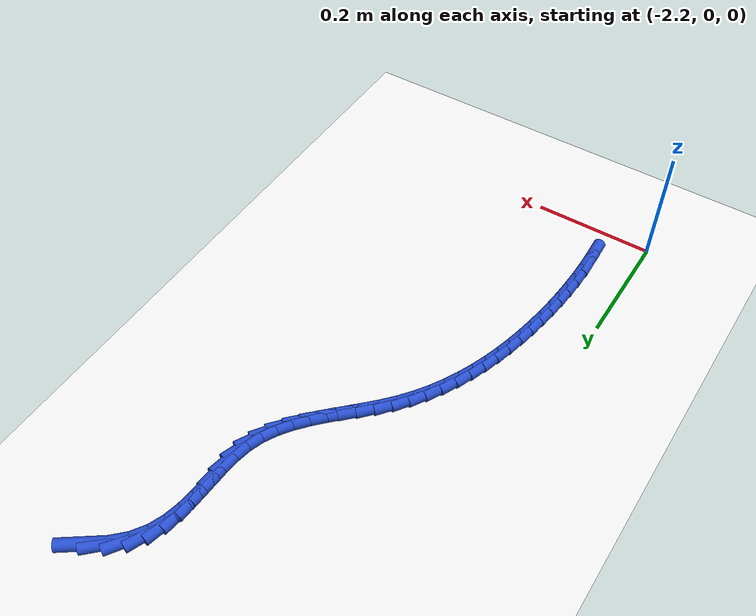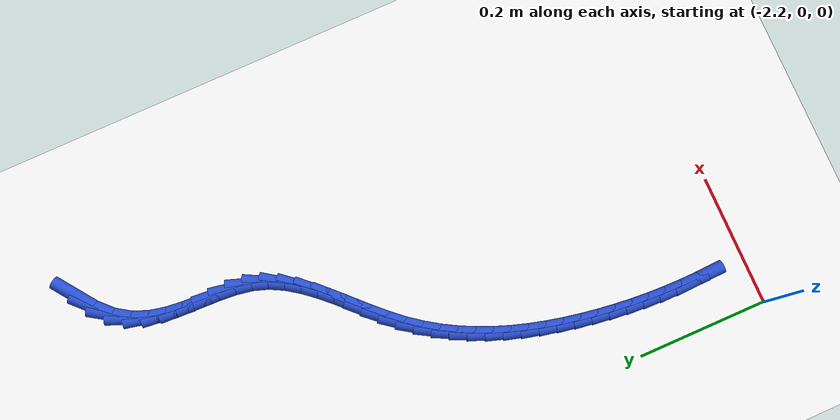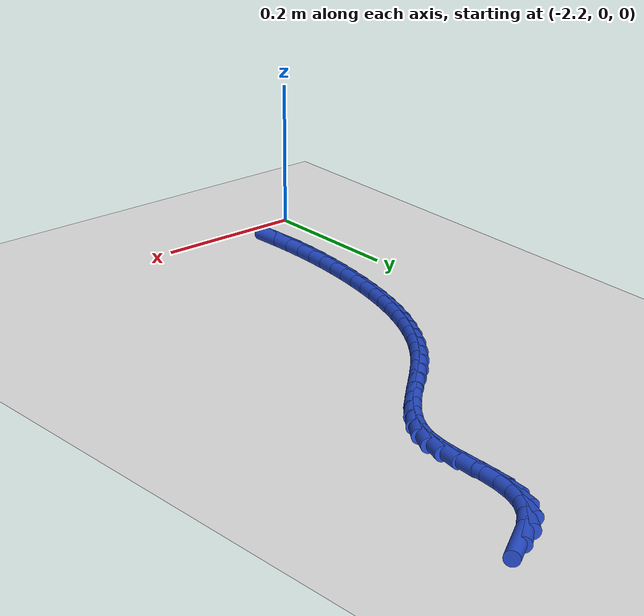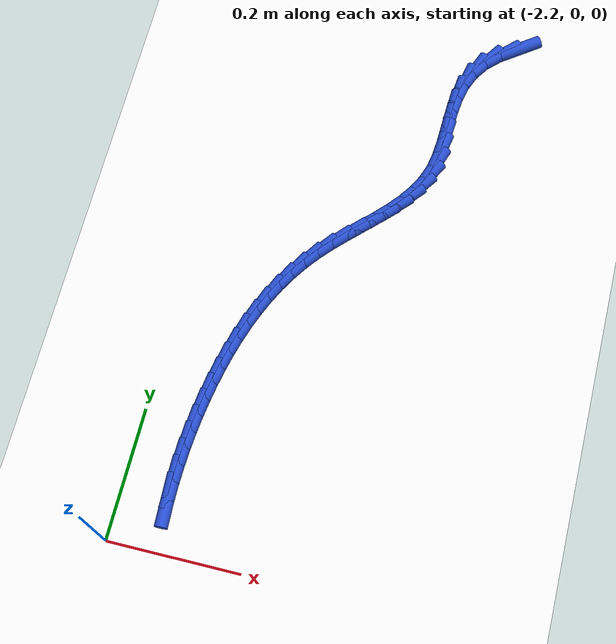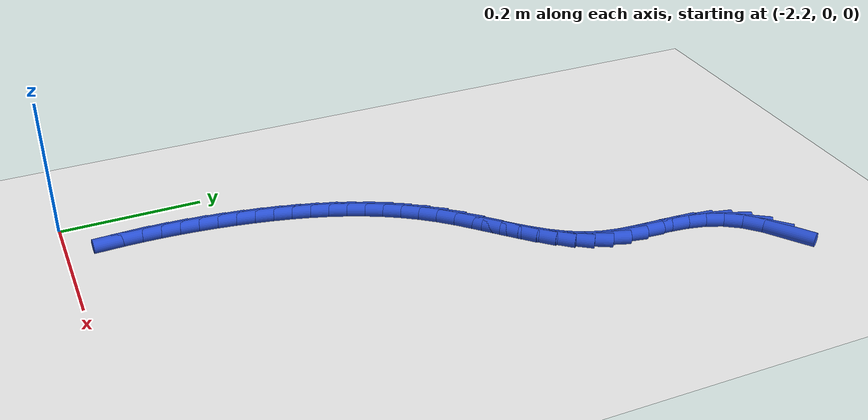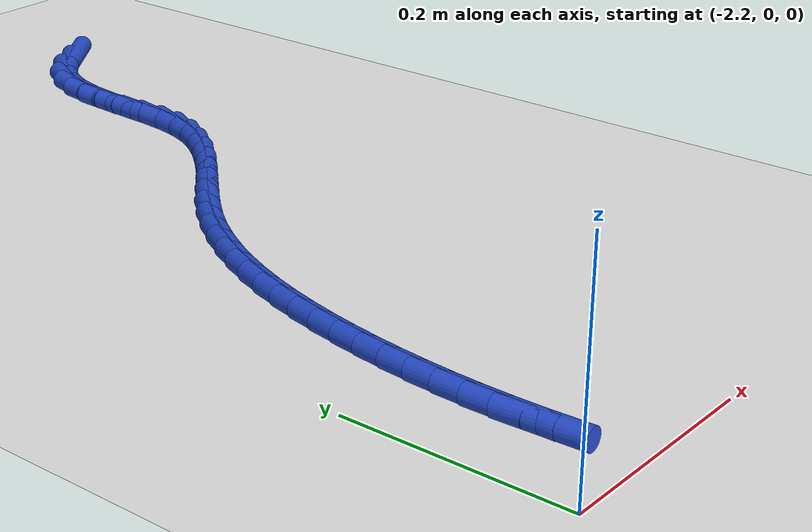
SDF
<sdf version="1.6">
 <world name="default">
  <model name="ground_plane">
   <static>1</static>
   <link name="link">
    <collision name="collision">
     <geometry><plane><normal>0 0 1</normal><size>100 100</size></plane></geometry>
     <surface><friction><ode><mu>100</mu><mu2>50</mu2></ode></friction></surface>
    </collision>
    <visual name="visual">
     <cast_shadows>0</cast_shadows>
     <geometry><plane><normal>0 0 1</normal><size>100 100</size></plane></geometry>
     <material>
      <script><uri>file://media/materials/scripts/gazebo.material</uri><name>Gazebo/WhiteGlow</name></script>
     </material>
    </visual>
   </link>
  </model>
  <model name="line">
   <link name="link_113">
    <pose>-1.7804318978348388 0.922196848700327 0.01 0 1.57 0.6228280951447669</pose>
    <collision name="collision">
     <geometry><cylinder><radius>0.01</radius><length>0.08</length></cylinder></geometry>
    </collision>
    <visual name="visual">
     <material>
      <script><name>Gazebo/Blue</name><uri>file://media/materials/scripts/gazebo.material</uri></script>
     </material>
     <geometry><cylinder><radius>0.01</radius><length>0.08</length></cylinder></geometry>
    </visual>
   </link>
   <link name="link_114">
    <pose>-1.8067268757675528 0.9033121338365956 0.01 0 1.57 0.7735924669744226</pose>
    <collision name="collision">
     <geometry><cylinder><radius>0.01</radius><length>0.08</length></cylinder></geometry>
    </collision>
    <visual name="visual">
     <material>
      <script><name>Gazebo/Blue</name><uri>file://media/materials/scripts/gazebo.material</uri></script>
     </material>
     <geometry><cylinder><radius>0.01</radius><length>0.08</length></cylinder></geometry>
    </visual>
   </link>
   <link name="link_115">
    <pose>-1.8279494496928415 0.8825848304375503 0.01 0 1.57 0.986109560297999</pose>
    <collision name="collision">
     <geometry><cylinder><radius>0.01</radius><length>0.08</length></cylinder></geometry>
    </collision>
    <visual name="visual">
     <material>
      <script><name>Gazebo/Blue</name><uri>file://media/materials/scripts/gazebo.material</uri></script>
     </material>
     <geometry><cylinder><radius>0.01</radius><length>0.08</length></cylinder></geometry>
    </visual>
   </link>
   <link name="link_116">
    <pose>-1.8430043568351748 0.8598394193925721 0.01 0 1.57 1.194696136422728</pose>
    <collision name="collision">
     <geometry><cylinder><radius>0.01</radius><length>0.08</length></cylinder></geometry>
    </collision>
    <visual name="visual">
     <material>
      <script><name>Gazebo/Blue</name><uri>file://media/materials/scripts/gazebo.material</uri></script>
     </material>
     <geometry><cylinder><radius>0.01</radius><length>0.08</length></cylinder></geometry>
    </visual>
   </link>
   <link name="link_117">
    <pose>-1.852655729742783 0.835399239361796 0.01 0 1.57 1.3580620464131121</pose>
    <collision name="collision">
     <geometry><cylinder><radius>0.01</radius><length>0.08</length></cylinder></geometry>
    </collision>
    <visual name="visual">
     <material>
      <script><name>Gazebo/Blue</name><uri>file://media/materials/scripts/gazebo.material</uri></script>
     </material>
     <geometry><cylinder><radius>0.01</radius><length>0.08</length></cylinder></geometry>
    </visual>
   </link>
   <link name="link_118">
    <pose>-1.858200243518386 0.8097305050189556 0.01 0 1.57 1.467710016279355</pose>
    <collision name="collision">
     <geometry><cylinder><radius>0.01</radius><length>0.08</length></cylinder></geometry>
    </collision>
    <visual name="visual">
     <material>
      <script><name>Gazebo/Blue</name><uri>file://media/materials/scripts/gazebo.material</uri></script>
     </material>
     <geometry><cylinder><radius>0.01</radius><length>0.08</length></cylinder></geometry>
    </visual>
   </link>
   <link name="link_119">
    <pose>-1.8609346169472485 0.7832994427573892 0.01 0 1.57 1.5251460054851158</pose>
    <collision name="collision">
     <geometry><cylinder><radius>0.01</radius><length>0.08</length></cylinder></geometry>
    </collision>
    <visual name="visual">
     <material>
      <script><name>Gazebo/Blue</name><uri>file://media/materials/scripts/gazebo.material</uri></script>
     </material>
     <geometry><cylinder><radius>0.01</radius><length>0.08</length></cylinder></geometry>
    </visual>
   </link>
   <link name="link_120">
    <pose>-1.8621555688146387 0.7565722789704353 0.01 0 1.57 1.5329995367925697</pose>
    <collision name="collision">
     <geometry><cylinder><radius>0.01</radius><length>0.08</length></cylinder></geometry>
    </collision>
    <visual name="visual">
     <material>
      <script><name>Gazebo/Blue</name><uri>file://media/materials/scripts/gazebo.material</uri></script>
     </material>
     <geometry><cylinder><radius>0.01</radius><length>0.08</length></cylinder></geometry>
    </visual>
   </link>
   <link name="link_121">
    <pose>-1.8631598179058209 0.7300152400514327 0.01 0 1.57 1.4905596284436837</pose>
    <collision name="collision">
     <geometry><cylinder><radius>0.01</radius><length>0.08</length></cylinder></geometry>
    </collision>
    <visual name="visual">
     <material>
      <script><name>Gazebo/Blue</name><uri>file://media/materials/scripts/gazebo.material</uri></script>
     </material>
     <geometry><cylinder><radius>0.01</radius><length>0.08</length></cylinder></geometry>
    </visual>
   </link>
   <link name="link_122">
    <pose>-1.865244083006061 0.7040945523937191 0.01 0 1.57 1.3929477148538822</pose>
    <collision name="collision">
     <geometry><cylinder><radius>0.01</radius><length>0.08</length></cylinder></geometry>
    </collision>
    <visual name="visual">
     <material>
      <script><name>Gazebo/Blue</name><uri>file://media/materials/scripts/gazebo.material</uri></script>
     </material>
     <geometry><cylinder><radius>0.01</radius><length>0.08</length></cylinder></geometry>
    </visual>
   </link>
   <link name="link_123">
    <pose>-1.8697050829006256 0.6792764423906333 0.01 0 1.57 1.2396146551155778</pose>
    <collision name="collision">
     <geometry><cylinder><radius>0.01</radius><length>0.08</length></cylinder></geometry>
    </collision>
    <visual name="visual">
     <material>
      <script><name>Gazebo/Blue</name><uri>file://media/materials/scripts/gazebo.material</uri></script>
     </material>
     <geometry><cylinder><radius>0.01</radius><length>0.08</length></cylinder></geometry>
    </visual>
   </link>
   <link name="link_124">
    <pose>-1.8777160002573734 0.6559784425139357 0.01 0 1.57 1.083832718466362</pose>
    <collision name="collision">
     <geometry><cylinder><radius>0.01</radius><length>0.08</length></cylinder></geometry>
    </collision>
    <visual name="visual">
     <material>
      <script><name>Gazebo/Blue</name><uri>file://media/materials/scripts/gazebo.material</uri></script>
     </material>
     <geometry><cylinder><radius>0.01</radius><length>0.08</length></cylinder></geometry>
    </visual>
   </link>
   <link name="link_125">
    <pose>-1.8892720402464327 0.6341537647993928 0.01 0 1.57 0.9605756713530434</pose>
    <collision name="collision">
     <geometry><cylinder><radius>0.01</radius><length>0.08</length></cylinder></geometry>
    </collision>
    <visual name="visual">
     <material>
      <script><name>Gazebo/Blue</name><uri>file://media/materials/scripts/gazebo.material</uri></script>
     </material>
     <geometry><cylinder><radius>0.01</radius><length>0.08</length></cylinder></geometry>
    </visual>
   </link>
   <link name="link_126">
    <pose>-1.9037153769650421 0.6134982176625287 0.01 0 1.57 0.8709692458482133</pose>
    <collision name="collision">
     <geometry><cylinder><radius>0.01</radius><length>0.08</length></cylinder></geometry>
    </collision>
    <visual name="visual">
     <material>
      <script><name>Gazebo/Blue</name><uri>file://media/materials/scripts/gazebo.material</uri></script>
     </material>
     <geometry><cylinder><radius>0.01</radius><length>0.08</length></cylinder></geometry>
    </visual>
   </link>
   <link name="link_127">
    <pose>-1.9203812338829225 0.5937048698074501 0.01 0 1.57 0.8124719996282539</pose>
    <collision name="collision">
     <geometry><cylinder><radius>0.01</radius><length>0.08</length></cylinder></geometry>
    </collision>
    <visual name="visual">
     <material>
      <script><name>Gazebo/Blue</name><uri>file://media/materials/scripts/gazebo.material</uri></script>
     </material>
     <geometry><cylinder><radius>0.01</radius><length>0.08</length></cylinder></geometry>
    </visual>
   </link>
   <link name="link_128">
    <pose>-1.9386048344697928 0.5744667899382634 0.01 0 1.57 0.7820699987151097</pose>
    <collision name="collision">
     <geometry><cylinder><radius>0.01</radius><length>0.08</length></cylinder></geometry>
    </collision>
    <visual name="visual">
     <material>
      <script><name>Gazebo/Blue</name><uri>file://media/materials/scripts/gazebo.material</uri></script>
     </material>
     <geometry><cylinder><radius>0.01</radius><length>0.08</length></cylinder></geometry>
    </visual>
   </link>
   <link name="link_129">
    <pose>-1.9577214021953737 0.5554770467590753 0.01 0 1.57 0.777677643581501</pose>
    <collision name="collision">
     <geometry><cylinder><radius>0.01</radius><length>0.08</length></cylinder></geometry>
    </collision>
    <visual name="visual">
     <material>
      <script><name>Gazebo/Blue</name><uri>file://media/materials/scripts/gazebo.material</uri></script>
     </material>
     <geometry><cylinder><radius>0.01</radius><length>0.08</length></cylinder></geometry>
    </visual>
   </link>
   <link name="link_130">
    <pose>-1.9770661605293862 0.5364287089739924 0.01 0 1.57 0.79859323279427</pose>
    <collision name="collision">
     <geometry><cylinder><radius>0.01</radius><length>0.08</length></cylinder></geometry>
    </collision>
    <visual name="visual">
     <material>
      <script><name>Gazebo/Blue</name><uri>file://media/materials/scripts/gazebo.material</uri></script>
     </material>
     <geometry><cylinder><radius>0.01</radius><length>0.08</length></cylinder></geometry>
    </visual>
   </link>
   <link name="link_131">
    <pose>-1.9959743329415505 0.5170148452871215 0.01 0 1.57 0.8454749350889651</pose>
    <collision name="collision">
     <geometry><cylinder><radius>0.01</radius><length>0.08</length></cylinder></geometry>
    </collision>
    <visual name="visual">
     <material>
      <script><name>Gazebo/Blue</name><uri>file://media/materials/scripts/gazebo.material</uri></script>
     </material>
     <geometry><cylinder><radius>0.01</radius><length>0.08</length></cylinder></geometry>
    </visual>
   </link>
   <link name="link_132">
    <pose>-2.0137813187298286 0.4969286146280831 0.01 0 1.57 0.9127988594006694</pose>
    <collision name="collision">
     <geometry><cylinder><radius>0.01</radius><length>0.08</length></cylinder></geometry>
    </collision>
    <visual name="visual">
     <material>
      <script><name>Gazebo/Blue</name><uri>file://media/materials/scripts/gazebo.material</uri></script>
     </material>
     <geometry><cylinder><radius>0.01</radius><length>0.08</length></cylinder></geometry>
    </visual>
   </link>
   <link name="link_133">
    <pose>-2.029994578981996 0.47595146870179905 0.01 0 1.57 0.9807215647862473</pose>
    <collision name="collision">
     <geometry><cylinder><radius>0.01</radius><length>0.08</length></cylinder></geometry>
    </collision>
    <visual name="visual">
     <material>
      <script><name>Gazebo/Blue</name><uri>file://media/materials/scripts/gazebo.material</uri></script>
     </material>
     <geometry><cylinder><radius>0.01</radius><length>0.08</length></cylinder></geometry>
    </visual>
   </link>
   <link name="link_134">
    <pose>-2.044615466202644 0.45411829749216537 0.01 0 1.57 1.0450587749981006</pose>
    <collision name="collision">
     <geometry><cylinder><radius>0.01</radius><length>0.08</length></cylinder></geometry>
    </collision>
    <visual name="visual">
     <material>
      <script><name>Gazebo/Blue</name><uri>file://media/materials/scripts/gazebo.material</uri></script>
     </material>
     <geometry><cylinder><radius>0.01</radius><length>0.08</length></cylinder></geometry>
    </visual>
   </link>
   <link name="link_135">
    <pose>-2.0577333994141616 0.431509181941955 0.01 0 1.57 1.1053684119010048</pose>
    <collision name="collision">
     <geometry><cylinder><radius>0.01</radius><length>0.08</length></cylinder></geometry>
    </collision>
    <visual name="visual">
     <material>
      <script><name>Gazebo/Blue</name><uri>file://media/materials/scripts/gazebo.material</uri></script>
     </material>
     <geometry><cylinder><radius>0.01</radius><length>0.08</length></cylinder></geometry>
    </visual>
   </link>
   <link name="link_136">
    <pose>-2.0694377976389373 0.40820420299393967 0.01 0 1.57 1.1613740869111846</pose>
    <collision name="collision">
     <geometry><cylinder><radius>0.01</radius><length>0.08</length></cylinder></geometry>
    </collision>
    <visual name="visual">
     <material>
      <script><name>Gazebo/Blue</name><uri>file://media/materials/scripts/gazebo.material</uri></script>
     </material>
     <geometry><cylinder><radius>0.01</radius><length>0.08</length></cylinder></geometry>
    </visual>
   </link>
   <link name="link_137">
    <pose>-2.0798180798993617 0.3842834415908922 0.01 0 1.57 1.2129432572887806</pose>
    <collision name="collision">
     <geometry><cylinder><radius>0.01</radius><length>0.08</length></cylinder></geometry>
    </collision>
    <visual name="visual">
     <material>
      <script><name>Gazebo/Blue</name><uri>file://media/materials/scripts/gazebo.material</uri></script>
     </material>
     <geometry><cylinder><radius>0.01</radius><length>0.08</length></cylinder></geometry>
    </visual>
   </link>
   <link name="link_138">
    <pose>-2.0889636652178236 0.35982697867558444 0.01 0 1.57 1.2600581287095534</pose>
    <collision name="collision">
     <geometry><cylinder><radius>0.01</radius><length>0.08</length></cylinder></geometry>
    </collision>
    <visual name="visual">
     <material>
      <script><name>Gazebo/Blue</name><uri>file://media/materials/scripts/gazebo.material</uri></script>
     </material>
     <geometry><cylinder><radius>0.01</radius><length>0.08</length></cylinder></geometry>
    </visual>
   </link>
   <link name="link_139">
    <pose>-2.096963972616712 0.33491489519078893 0.01 0 1.57 1.3027848509942759</pose>
    <collision name="collision">
     <geometry><cylinder><radius>0.01</radius><length>0.08</length></cylinder></geometry>
    </collision>
    <visual name="visual">
     <material>
      <script><name>Gazebo/Blue</name><uri>file://media/materials/scripts/gazebo.material</uri></script>
     </material>
     <geometry><cylinder><radius>0.01</radius><length>0.08</length></cylinder></geometry>
    </visual>
   </link>
   <link name="link_140">
    <pose>-2.1039084211184167 0.3096272720792782 0.01 0 1.57 1.3412447667785694</pose>
    <collision name="collision">
     <geometry><cylinder><radius>0.01</radius><length>0.08</length></cylinder></geometry>
    </collision>
    <visual name="visual">
     <material>
      <script><name>Gazebo/Blue</name><uri>file://media/materials/scripts/gazebo.material</uri></script>
     </material>
     <geometry><cylinder><radius>0.01</radius><length>0.08</length></cylinder></geometry>
    </visual>
   </link>
   <link name="link_141">
    <pose>-2.1098864297453273 0.2840441902838237 0.01 0 1.57 1.3755896923211488</pose>
    <collision name="collision">
     <geometry><cylinder><radius>0.01</radius><length>0.08</length></cylinder></geometry>
    </collision>
    <visual name="visual">
     <material>
      <script><name>Gazebo/Blue</name><uri>file://media/materials/scripts/gazebo.material</uri></script>
     </material>
     <geometry><cylinder><radius>0.01</radius><length>0.08</length></cylinder></geometry>
    </visual>
   </link>
   <link name="link_142">
    <pose>-2.1149874175198327 0.2582457307471982 0.01 0 1.57 1.4060899568483347</pose>
    <collision name="collision">
     <geometry><cylinder><radius>0.01</radius><length>0.08</length></cylinder></geometry>
    </collision>
    <visual name="visual">
     <material>
      <script><name>Gazebo/Blue</name><uri>file://media/materials/scripts/gazebo.material</uri></script>
     </material>
     <geometry><cylinder><radius>0.01</radius><length>0.08</length></cylinder></geometry>
    </visual>
   </link>
   <link name="link_143">
    <pose>-2.1192981994848217 0.2323103036630744 0.01 0 1.57 1.4348867730377042</pose>
    <collision name="collision">
     <geometry><cylinder><radius>0.01</radius><length>0.08</length></cylinder></geometry>
    </collision>
    <visual name="visual">
     <material>
      <script><name>Gazebo/Blue</name><uri>file://media/materials/scripts/gazebo.material</uri></script>
     </material>
     <geometry><cylinder><radius>0.01</radius><length>0.08</length></cylinder></geometry>
    </visual>
   </link>
   <link name="link_144">
    <pose>-2.122857191053365 0.20628526535625236 0.01 0 1.57 1.4637958824350858</pose>
    <collision name="collision">
     <geometry><cylinder><radius>0.01</radius><length>0.08</length></cylinder></geometry>
    </collision>
    <visual name="visual">
     <material>
      <script><name>Gazebo/Blue</name><uri>file://media/materials/scripts/gazebo.material</uri></script>
     </material>
     <geometry><cylinder><radius>0.01</radius><length>0.08</length></cylinder></geometry>
    </visual>
   </link>
   <link name="link_145">
    <pose>-2.125660043758851 0.18019053425754214 0.01 0 1.57 1.4928950526916425</pose>
    <collision name="collision">
     <geometry><cylinder><radius>0.01</radius><length>0.08</length></cylinder></geometry>
    </collision>
    <visual name="visual">
     <material>
      <script><name>Gazebo/Blue</name><uri>file://media/materials/scripts/gazebo.material</uri></script>
     </material>
     <geometry><cylinder><radius>0.01</radius><length>0.08</length></cylinder></geometry>
    </visual>
   </link>
   <link name="link_146">
    <pose>-2.1277009377232265 0.15404508471991477 0.01 0 1.57 1.5222000940625562</pose>
    <collision name="collision">
     <geometry><cylinder><radius>0.01</radius><length>0.08</length></cylinder></geometry>
    </collision>
    <visual name="visual">
     <material>
      <script><name>Gazebo/Blue</name><uri>file://media/materials/scripts/gazebo.material</uri></script>
     </material>
     <geometry><cylinder><radius>0.01</radius><length>0.08</length></cylinder></geometry>
    </visual>
   </link>
   <link name="link_147">
    <pose>-2.1289740530684416 0.12786789109634136 0.01 0 1.57 1.5517258040849564</pose>
    <collision name="collision">
     <geometry><cylinder><radius>0.01</radius><length>0.08</length></cylinder></geometry>
    </collision>
    <visual name="visual">
     <material>
      <script><name>Gazebo/Blue</name><uri>file://media/materials/scripts/gazebo.material</uri></script>
     </material>
     <geometry><cylinder><radius>0.01</radius><length>0.08</length></cylinder></geometry>
    </visual>
   </link>
   <link name="link_148">
    <pose>-2.129473569916441 0.10167792773979288 0.01 0 1.57 -1.5601068429430243</pose>
    <collision name="collision">
     <geometry><cylinder><radius>0.01</radius><length>0.08</length></cylinder></geometry>
    </collision>
    <visual name="visual">
     <material>
      <script><name>Gazebo/Blue</name><uri>file://media/materials/scripts/gazebo.material</uri></script>
     </material>
     <geometry><cylinder><radius>0.01</radius><length>0.08</length></cylinder></geometry>
    </visual>
   </link>
   <link name="link_149">
    <pose>-2.1291936683891755 0.07549416900324046 0.01 0 1.57 -1.5301002451505998</pose>
    <collision name="collision">
     <geometry><cylinder><radius>0.01</radius><length>0.08</length></cylinder></geometry>
    </collision>
    <visual name="visual">
     <material>
      <script><name>Gazebo/Blue</name><uri>file://media/materials/scripts/gazebo.material</uri></script>
     </material>
     <geometry><cylinder><radius>0.01</radius><length>0.08</length></cylinder></geometry>
    </visual>
   </link>
  </model>
 </world>
</sdf>
